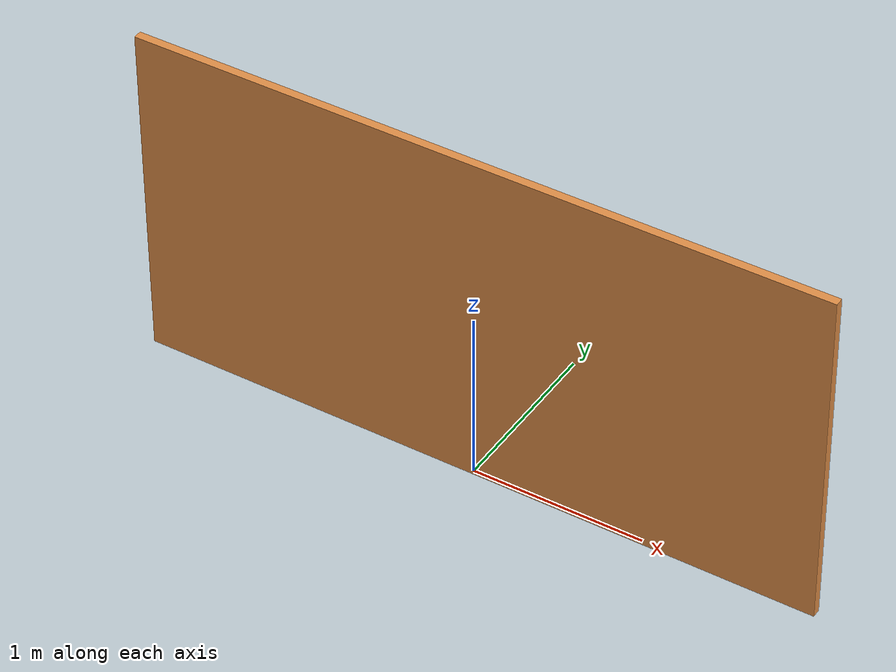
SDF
<?xml version="1.0"?>
<sdf version="1.9"><model name="rear_wall"><static>true</static><link name="wall_link"><pose>0 0 1 0 0 0</pose><collision name="collision"><geometry><box><size>4 0.05 2</size></box></geometry></collision><visual name="visual"><geometry><box><size>4 0.05 2</size></box></geometry><material><ambient>0.88 0.56 0.28 1</ambient><diffuse>0.88 0.56 0.28 1</diffuse></material></visual></link></model></sdf>
